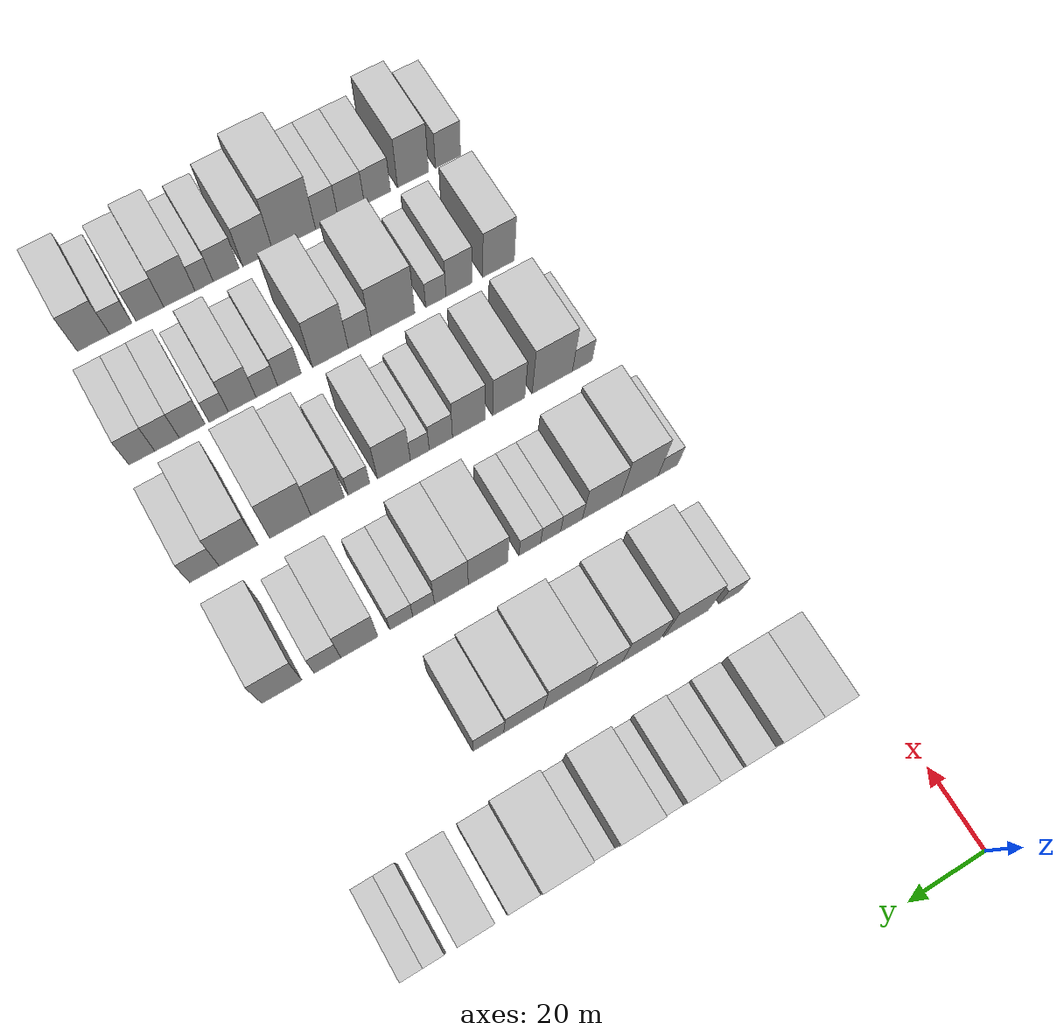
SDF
<sdf version="1.6">
 <world name="default">
  <model name="building_62">
   <static>1</static>
   <pose>50.0000 14.7168 0 0.000000 0.000000 0.000000</pose>
   <link name="link">
    <pose>0 0 10.50 0 0 0</pose>
    <collision name="collision"><geometry><box><size>20.0000 8.4098 21.0000</size></box></geometry></collision>
    <visual name="visual">
     <cast_shadows>0</cast_shadows>
     <geometry><box><size>20.0000 8.4098 21.0000</size></box></geometry>
     <material>
      <script>
       <uri>model://HANNAS_wall/materials/scripts</uri>
       <uri>model://HANNAS_wall/materials/textures</uri>
       <name>vrc/HANNAS_wall</name>
      </script>
     </material>
    </visual>
   </link>
  </model>
  <model name="building_63">
   <static>1</static>
   <pose>50.0000 23.9289 0 0.000000 0.000000 0.000000</pose>
   <link name="link">
    <pose>0 0 10.50 0 0 0</pose>
    <collision name="collision"><geometry><box><size>20.0000 10.0146 21.0000</size></box></geometry></collision>
    <visual name="visual">
     <cast_shadows>0</cast_shadows>
     <geometry><box><size>20.0000 10.0146 21.0000</size></box></geometry>
     <material>
      <script>
       <uri>model://HANNAS_wall/materials/scripts</uri>
       <uri>model://HANNAS_wall/materials/textures</uri>
       <name>vrc/HANNAS_wall</name>
      </script>
     </material>
    </visual>
   </link>
  </model>
  <model name="building_64">
   <static>1</static>
   <pose>50.0000 33.5453 0 0.000000 0.000000 0.000000</pose>
   <link name="link">
    <pose>0 0 9.00 0 0 0</pose>
    <collision name="collision"><geometry><box><size>20.0000 7.2182 18.0000</size></box></geometry></collision>
    <visual name="visual">
     <cast_shadows>0</cast_shadows>
     <geometry><box><size>20.0000 7.2182 18.0000</size></box></geometry>
     <material>
      <script>
       <uri>model://HANNAS_wall/materials/scripts</uri>
       <uri>model://HANNAS_wall/materials/textures</uri>
       <name>vrc/HANNAS_wall</name>
      </script>
     </material>
    </visual>
   </link>
  </model>
  <model name="building_65">
   <static>1</static>
   <pose>50.0000 40.1623 0 0.000000 0.000000 0.000000</pose>
   <link name="link">
    <pose>0 0 7.50 0 0 0</pose>
    <collision name="collision"><geometry><box><size>20.0000 6.0159 15.0000</size></box></geometry></collision>
    <visual name="visual">
     <cast_shadows>0</cast_shadows>
     <geometry><box><size>20.0000 6.0159 15.0000</size></box></geometry>
     <material>
      <script>
       <uri>model://HANNAS_wall/materials/scripts</uri>
       <uri>model://HANNAS_wall/materials/textures</uri>
       <name>vrc/HANNAS_wall</name>
      </script>
     </material>
    </visual>
   </link>
  </model>
  <model name="building_66">
   <static>1</static>
   <pose>50.0000 47.1548 0 0.000000 0.000000 0.000000</pose>
   <link name="link">
    <pose>0 0 9.00 0 0 0</pose>
    <collision name="collision"><geometry><box><size>20.0000 7.9690 18.0000</size></box></geometry></collision>
    <visual name="visual">
     <cast_shadows>0</cast_shadows>
     <geometry><box><size>20.0000 7.9690 18.0000</size></box></geometry>
     <material>
      <script>
       <uri>model://HANNAS_wall/materials/scripts</uri>
       <uri>model://HANNAS_wall/materials/textures</uri>
       <name>vrc/HANNAS_wall</name>
      </script>
     </material>
    </visual>
   </link>
  </model>
  <model name="building_67">
   <static>1</static>
   <pose>50.0000 54.0745 0 0.000000 0.000000 0.000000</pose>
   <link name="link">
    <pose>0 0 6.00 0 0 0</pose>
    <collision name="collision"><geometry><box><size>20.0000 5.8704 12.0000</size></box></geometry></collision>
    <visual name="visual">
     <cast_shadows>0</cast_shadows>
     <geometry><box><size>20.0000 5.8704 12.0000</size></box></geometry>
     <material>
      <script>
       <uri>model://HANNAS_wall/materials/scripts</uri>
       <uri>model://HANNAS_wall/materials/textures</uri>
       <name>vrc/HANNAS_wall</name>
      </script>
     </material>
    </visual>
   </link>
  </model>
  <model name="building_68">
   <static>1</static>
   <pose>50.0000 62.2792 0 0.000000 0.000000 0.000000</pose>
   <link name="link">
    <pose>0 0 12.00 0 0 0</pose>
    <collision name="collision"><geometry><box><size>20.0000 10.5389 24.0000</size></box></geometry></collision>
    <visual name="visual">
     <cast_shadows>0</cast_shadows>
     <geometry><box><size>20.0000 10.5389 24.0000</size></box></geometry>
     <material>
      <script>
       <uri>model://HANNAS_wall/materials/scripts</uri>
       <uri>model://HANNAS_wall/materials/textures</uri>
       <name>vrc/HANNAS_wall</name>
      </script>
     </material>
    </visual>
   </link>
  </model>
  <model name="building_69">
   <static>1</static>
   <pose>50.0000 69.9918 0 0.000000 0.000000 0.000000</pose>
   <link name="link">
    <pose>0 0 6.00 0 0 0</pose>
    <collision name="collision"><geometry><box><size>20.0000 4.8864 12.0000</size></box></geometry></collision>
    <visual name="visual">
     <cast_shadows>0</cast_shadows>
     <geometry><box><size>20.0000 4.8864 12.0000</size></box></geometry>
     <material>
      <script>
       <uri>model://HANNAS_wall/materials/scripts</uri>
       <uri>model://HANNAS_wall/materials/textures</uri>
       <name>vrc/HANNAS_wall</name>
      </script>
     </material>
    </visual>
   </link>
  </model>
  <model name="building_70">
   <static>1</static>
   <pose>50.0000 79.2422 0 0.000000 0.000000 0.000000</pose>
   <link name="link">
    <pose>0 0 12.00 0 0 0</pose>
    <collision name="collision"><geometry><box><size>20.0000 11.6143 24.0000</size></box></geometry></collision>
    <visual name="visual">
     <cast_shadows>0</cast_shadows>
     <geometry><box><size>20.0000 11.6143 24.0000</size></box></geometry>
     <material>
      <script>
       <uri>model://HANNAS_wall/materials/scripts</uri>
       <uri>model://HANNAS_wall/materials/textures</uri>
       <name>vrc/HANNAS_wall</name>
      </script>
     </material>
    </visual>
   </link>
  </model>
  <model name="building_71">
   <static>1</static>
   <pose>50.0000 88.7666 0 0.000000 0.000000 0.000000</pose>
   <link name="link">
    <pose>0 0 7.50 0 0 0</pose>
    <collision name="collision"><geometry><box><size>20.0000 7.4345 15.0000</size></box></geometry></collision>
    <visual name="visual">
     <cast_shadows>0</cast_shadows>
     <geometry><box><size>20.0000 7.4345 15.0000</size></box></geometry>
     <material>
      <script>
       <uri>model://HANNAS_wall/materials/scripts</uri>
       <uri>model://HANNAS_wall/materials/textures</uri>
       <name>vrc/HANNAS_wall</name>
      </script>
     </material>
    </visual>
   </link>
  </model>
  <model name="building_72">
   <static>1</static>
   <pose>50.0000 99.7074 0 0.000000 0.000000 0.000000</pose>
   <link name="link">
    <pose>0 0 9.00 0 0 0</pose>
    <collision name="collision"><geometry><box><size>20.0000 8.4472 18.0000</size></box></geometry></collision>
    <visual name="visual">
     <cast_shadows>0</cast_shadows>
     <geometry><box><size>20.0000 8.4472 18.0000</size></box></geometry>
     <material>
      <script>
       <uri>model://HANNAS_wall/materials/scripts</uri>
       <uri>model://HANNAS_wall/materials/textures</uri>
       <name>vrc/HANNAS_wall</name>
      </script>
     </material>
    </visual>
   </link>
  </model>
  <model name="building_73">
   <static>1</static>
   <pose>50.0000 109.3874 0 0.000000 0.000000 0.000000</pose>
   <link name="link">
    <pose>0 0 6.00 0 0 0</pose>
    <collision name="collision"><geometry><box><size>20.0000 4.9127 12.0000</size></box></geometry></collision>
    <visual name="visual">
     <cast_shadows>0</cast_shadows>
     <geometry><box><size>20.0000 4.9127 12.0000</size></box></geometry>
     <material>
      <script>
       <uri>model://HANNAS_wall/materials/scripts</uri>
       <uri>model://HANNAS_wall/materials/textures</uri>
       <name>vrc/HANNAS_wall</name>
      </script>
     </material>
    </visual>
   </link>
  </model>
  <model name="building_74">
   <static>1</static>
   <pose>50.0000 114.4167 0 0.000000 0.000000 0.000000</pose>
   <link name="link">
    <pose>0 0 6.00 0 0 0</pose>
    <collision name="collision"><geometry><box><size>20.0000 5.1460 12.0000</size></box></geometry></collision>
    <visual name="visual">
     <cast_shadows>0</cast_shadows>
     <geometry><box><size>20.0000 5.1460 12.0000</size></box></geometry>
     <material>
      <script>
       <uri>model://HANNAS_wall/materials/scripts</uri>
       <uri>model://HANNAS_wall/materials/textures</uri>
       <name>vrc/HANNAS_wall</name>
      </script>
     </material>
    </visual>
   </link>
  </model>
  <model name="building_182">
   <static>1</static>
   <pose>82.0000 15.6410 0 0.000000 0.000000 0.000000</pose>
   <link name="link">
    <pose>0 0 6.00 0 0 0</pose>
    <collision name="collision"><geometry><box><size>20.0000 5.5206 12.0000</size></box></geometry></collision>
    <visual name="visual">
     <cast_shadows>0</cast_shadows>
     <geometry><box><size>20.0000 5.5206 12.0000</size></box></geometry>
     <material>
      <script>
       <uri>model://HANNAS_wall/materials/scripts</uri>
       <uri>model://HANNAS_wall/materials/textures</uri>
       <name>vrc/HANNAS_wall</name>
      </script>
     </material>
    </visual>
   </link>
  </model>
  <model name="building_183">
   <static>1</static>
   <pose>82.0000 27.2115 0 0.000000 0.000000 0.000000</pose>
   <link name="link">
    <pose>0 0 12.00 0 0 0</pose>
    <collision name="collision"><geometry><box><size>20.0000 11.6202 24.0000</size></box></geometry></collision>
    <visual name="visual">
     <cast_shadows>0</cast_shadows>
     <geometry><box><size>20.0000 11.6202 24.0000</size></box></geometry>
     <material>
      <script>
       <uri>model://HANNAS_wall/materials/scripts</uri>
       <uri>model://HANNAS_wall/materials/textures</uri>
       <name>vrc/HANNAS_wall</name>
      </script>
     </material>
    </visual>
   </link>
  </model>
  <model name="building_184">
   <static>1</static>
   <pose>82.0000 39.0086 0 0.000000 0.000000 0.000000</pose>
   <link name="link">
    <pose>0 0 10.50 0 0 0</pose>
    <collision name="collision"><geometry><box><size>20.0000 9.9740 21.0000</size></box></geometry></collision>
    <visual name="visual">
     <cast_shadows>0</cast_shadows>
     <geometry><box><size>20.0000 9.9740 21.0000</size></box></geometry>
     <material>
      <script>
       <uri>model://HANNAS_wall/materials/scripts</uri>
       <uri>model://HANNAS_wall/materials/textures</uri>
       <name>vrc/HANNAS_wall</name>
      </script>
     </material>
    </visual>
   </link>
  </model>
  <model name="building_185">
   <static>1</static>
   <pose>82.0000 48.3082 0 0.000000 0.000000 0.000000</pose>
   <link name="link">
    <pose>0 0 9.00 0 0 0</pose>
    <collision name="collision"><geometry><box><size>20.0000 8.6252 18.0000</size></box></geometry></collision>
    <visual name="visual">
     <cast_shadows>0</cast_shadows>
     <geometry><box><size>20.0000 8.6252 18.0000</size></box></geometry>
     <material>
      <script>
       <uri>model://HANNAS_wall/materials/scripts</uri>
       <uri>model://HANNAS_wall/materials/textures</uri>
       <name>vrc/HANNAS_wall</name>
      </script>
     </material>
    </visual>
   </link>
  </model>
  <model name="building_186">
   <static>1</static>
   <pose>82.0000 58.3851 0 0.000000 0.000000 0.000000</pose>
   <link name="link">
    <pose>0 0 12.00 0 0 0</pose>
    <collision name="collision"><geometry><box><size>20.0000 11.5287 24.0000</size></box></geometry></collision>
    <visual name="visual">
     <cast_shadows>0</cast_shadows>
     <geometry><box><size>20.0000 11.5287 24.0000</size></box></geometry>
     <material>
      <script>
       <uri>model://HANNAS_wall/materials/scripts</uri>
       <uri>model://HANNAS_wall/materials/textures</uri>
       <name>vrc/HANNAS_wall</name>
      </script>
     </material>
    </visual>
   </link>
  </model>
  <model name="building_187">
   <static>1</static>
   <pose>82.0000 69.1401 0 0.000000 0.000000 0.000000</pose>
   <link name="link">
    <pose>0 0 10.50 0 0 0</pose>
    <collision name="collision"><geometry><box><size>20.0000 9.9812 21.0000</size></box></geometry></collision>
    <visual name="visual">
     <cast_shadows>0</cast_shadows>
     <geometry><box><size>20.0000 9.9812 21.0000</size></box></geometry>
     <material>
      <script>
       <uri>model://HANNAS_wall/materials/scripts</uri>
       <uri>model://HANNAS_wall/materials/textures</uri>
       <name>vrc/HANNAS_wall</name>
      </script>
     </material>
    </visual>
   </link>
  </model>
  <model name="building_188">
   <static>1</static>
   <pose>82.0000 77.9259 0 0.000000 0.000000 0.000000</pose>
   <link name="link">
    <pose>0 0 9.00 0 0 0</pose>
    <collision name="collision"><geometry><box><size>20.0000 7.5904 18.0000</size></box></geometry></collision>
    <visual name="visual">
     <cast_shadows>0</cast_shadows>
     <geometry><box><size>20.0000 7.5904 18.0000</size></box></geometry>
     <material>
      <script>
       <uri>model://HANNAS_wall/materials/scripts</uri>
       <uri>model://HANNAS_wall/materials/textures</uri>
       <name>vrc/HANNAS_wall</name>
      </script>
     </material>
    </visual>
   </link>
  </model>
  <model name="building_296">
   <static>1</static>
   <pose>114.0000 11.0678 0 0.000000 0.000000 0.000000</pose>
   <link name="link">
    <pose>0 0 6.00 0 0 0</pose>
    <collision name="collision"><geometry><box><size>20.0000 5.3892 12.0000</size></box></geometry></collision>
    <visual name="visual">
     <cast_shadows>0</cast_shadows>
     <geometry><box><size>20.0000 5.3892 12.0000</size></box></geometry>
     <material>
      <script>
       <uri>model://HANNAS_wall/materials/scripts</uri>
       <uri>model://HANNAS_wall/materials/textures</uri>
       <name>vrc/HANNAS_wall</name>
      </script>
     </material>
    </visual>
   </link>
  </model>
  <model name="building_297">
   <static>1</static>
   <pose>114.0000 18.8016 0 0.000000 0.000000 0.000000</pose>
   <link name="link">
    <pose>0 0 12.00 0 0 0</pose>
    <collision name="collision"><geometry><box><size>20.0000 10.0784 24.0000</size></box></geometry></collision>
    <visual name="visual">
     <cast_shadows>0</cast_shadows>
     <geometry><box><size>20.0000 10.0784 24.0000</size></box></geometry>
     <material>
      <script>
       <uri>model://HANNAS_wall/materials/scripts</uri>
       <uri>model://HANNAS_wall/materials/textures</uri>
       <name>vrc/HANNAS_wall</name>
      </script>
     </material>
    </visual>
   </link>
  </model>
  <model name="building_298">
   <static>1</static>
   <pose>114.0000 29.0412 0 0.000000 0.000000 0.000000</pose>
   <link name="link">
    <pose>0 0 10.50 0 0 0</pose>
    <collision name="collision"><geometry><box><size>20.0000 10.4008 21.0000</size></box></geometry></collision>
    <visual name="visual">
     <cast_shadows>0</cast_shadows>
     <geometry><box><size>20.0000 10.4008 21.0000</size></box></geometry>
     <material>
      <script>
       <uri>model://HANNAS_wall/materials/scripts</uri>
       <uri>model://HANNAS_wall/materials/textures</uri>
       <name>vrc/HANNAS_wall</name>
      </script>
     </material>
    </visual>
   </link>
  </model>
  <model name="building_299">
   <static>1</static>
   <pose>114.0000 37.1388 0 0.000000 0.000000 0.000000</pose>
   <link name="link">
    <pose>0 0 6.00 0 0 0</pose>
    <collision name="collision"><geometry><box><size>20.0000 5.7946 12.0000</size></box></geometry></collision>
    <visual name="visual">
     <cast_shadows>0</cast_shadows>
     <geometry><box><size>20.0000 5.7946 12.0000</size></box></geometry>
     <material>
      <script>
       <uri>model://HANNAS_wall/materials/scripts</uri>
       <uri>model://HANNAS_wall/materials/textures</uri>
       <name>vrc/HANNAS_wall</name>
      </script>
     </material>
    </visual>
   </link>
  </model>
  <model name="building_300">
   <static>1</static>
   <pose>114.0000 42.6697 0 0.000000 0.000000 0.000000</pose>
   <link name="link">
    <pose>0 0 6.00 0 0 0</pose>
    <collision name="collision"><geometry><box><size>20.0000 5.2671 12.0000</size></box></geometry></collision>
    <visual name="visual">
     <cast_shadows>0</cast_shadows>
     <geometry><box><size>20.0000 5.2671 12.0000</size></box></geometry>
     <material>
      <script>
       <uri>model://HANNAS_wall/materials/scripts</uri>
       <uri>model://HANNAS_wall/materials/textures</uri>
       <name>vrc/HANNAS_wall</name>
      </script>
     </material>
    </visual>
   </link>
  </model>
  <model name="building_301">
   <static>1</static>
   <pose>114.0000 48.1401 0 0.000000 0.000000 0.000000</pose>
   <link name="link">
    <pose>0 0 6.00 0 0 0</pose>
    <collision name="collision"><geometry><box><size>20.0000 5.6737 12.0000</size></box></geometry></collision>
    <visual name="visual">
     <cast_shadows>0</cast_shadows>
     <geometry><box><size>20.0000 5.6737 12.0000</size></box></geometry>
     <material>
      <script>
       <uri>model://HANNAS_wall/materials/scripts</uri>
       <uri>model://HANNAS_wall/materials/textures</uri>
       <name>vrc/HANNAS_wall</name>
      </script>
     </material>
    </visual>
   </link>
  </model>
  <model name="building_302">
   <static>1</static>
   <pose>114.0000 59.0557 0 0.000000 0.000000 0.000000</pose>
   <link name="link">
    <pose>0 0 10.50 0 0 0</pose>
    <collision name="collision"><geometry><box><size>20.0000 10.1576 21.0000</size></box></geometry></collision>
    <visual name="visual">
     <cast_shadows>0</cast_shadows>
     <geometry><box><size>20.0000 10.1576 21.0000</size></box></geometry>
     <material>
      <script>
       <uri>model://HANNAS_wall/materials/scripts</uri>
       <uri>model://HANNAS_wall/materials/textures</uri>
       <name>vrc/HANNAS_wall</name>
      </script>
     </material>
    </visual>
   </link>
  </model>
  <model name="building_303">
   <static>1</static>
   <pose>114.0000 68.4802 0 0.000000 0.000000 0.000000</pose>
   <link name="link">
    <pose>0 0 10.50 0 0 0</pose>
    <collision name="collision"><geometry><box><size>20.0000 8.6915 21.0000</size></box></geometry></collision>
    <visual name="visual">
     <cast_shadows>0</cast_shadows>
     <geometry><box><size>20.0000 8.6915 21.0000</size></box></geometry>
     <material>
      <script>
       <uri>model://HANNAS_wall/materials/scripts</uri>
       <uri>model://HANNAS_wall/materials/textures</uri>
       <name>vrc/HANNAS_wall</name>
      </script>
     </material>
    </visual>
   </link>
  </model>
  <model name="building_304">
   <static>1</static>
   <pose>114.0000 75.5660 0 0.000000 0.000000 0.000000</pose>
   <link name="link">
    <pose>0 0 6.00 0 0 0</pose>
    <collision name="collision"><geometry><box><size>20.0000 5.4801 12.0000</size></box></geometry></collision>
    <visual name="visual">
     <cast_shadows>0</cast_shadows>
     <geometry><box><size>20.0000 5.4801 12.0000</size></box></geometry>
     <material>
      <script>
       <uri>model://HANNAS_wall/materials/scripts</uri>
       <uri>model://HANNAS_wall/materials/textures</uri>
       <name>vrc/HANNAS_wall</name>
      </script>
     </material>
    </visual>
   </link>
  </model>
  <model name="building_305">
   <static>1</static>
   <pose>114.0000 81.2241 0 0.000000 0.000000 0.000000</pose>
   <link name="link">
    <pose>0 0 6.00 0 0 0</pose>
    <collision name="collision"><geometry><box><size>20.0000 5.8360 12.0000</size></box></geometry></collision>
    <visual name="visual">
     <cast_shadows>0</cast_shadows>
     <geometry><box><size>20.0000 5.8360 12.0000</size></box></geometry>
     <material>
      <script>
       <uri>model://HANNAS_wall/materials/scripts</uri>
       <uri>model://HANNAS_wall/materials/textures</uri>
       <name>vrc/HANNAS_wall</name>
      </script>
     </material>
    </visual>
   </link>
  </model>
  <model name="building_306">
   <static>1</static>
   <pose>114.0000 91.7777 0 0.000000 0.000000 0.000000</pose>
   <link name="link">
    <pose>0 0 10.50 0 0 0</pose>
    <collision name="collision"><geometry><box><size>20.0000 9.2712 21.0000</size></box></geometry></collision>
    <visual name="visual">
     <cast_shadows>0</cast_shadows>
     <geometry><box><size>20.0000 9.2712 21.0000</size></box></geometry>
     <material>
      <script>
       <uri>model://HANNAS_wall/materials/scripts</uri>
       <uri>model://HANNAS_wall/materials/textures</uri>
       <name>vrc/HANNAS_wall</name>
      </script>
     </material>
    </visual>
   </link>
  </model>
  <model name="building_307">
   <static>1</static>
   <pose>114.0000 99.7240 0 0.000000 0.000000 0.000000</pose>
   <link name="link">
    <pose>0 0 7.50 0 0 0</pose>
    <collision name="collision"><geometry><box><size>20.0000 6.6213 15.0000</size></box></geometry></collision>
    <visual name="visual">
     <cast_shadows>0</cast_shadows>
     <geometry><box><size>20.0000 6.6213 15.0000</size></box></geometry>
     <material>
      <script>
       <uri>model://HANNAS_wall/materials/scripts</uri>
       <uri>model://HANNAS_wall/materials/textures</uri>
       <name>vrc/HANNAS_wall</name>
      </script>
     </material>
    </visual>
   </link>
  </model>
  <model name="building_308">
   <static>1</static>
   <pose>114.0000 110.9625 0 0.000000 0.000000 0.000000</pose>
   <link name="link">
    <pose>0 0 10.50 0 0 0</pose>
    <collision name="collision"><geometry><box><size>20.0000 9.8557 21.0000</size></box></geometry></collision>
    <visual name="visual">
     <cast_shadows>0</cast_shadows>
     <geometry><box><size>20.0000 9.8557 21.0000</size></box></geometry>
     <material>
      <script>
       <uri>model://HANNAS_wall/materials/scripts</uri>
       <uri>model://HANNAS_wall/materials/textures</uri>
       <name>vrc/HANNAS_wall</name>
      </script>
     </material>
    </visual>
   </link>
  </model>
  <model name="building_414">
   <static>1</static>
   <pose>146.0000 14.2415 0 0.000000 0.000000 0.000000</pose>
   <link name="link">
    <pose>0 0 6.00 0 0 0</pose>
    <collision name="collision"><geometry><box><size>20.0000 5.4592 12.0000</size></box></geometry></collision>
    <visual name="visual">
     <cast_shadows>0</cast_shadows>
     <geometry><box><size>20.0000 5.4592 12.0000</size></box></geometry>
     <material>
      <script>
       <uri>model://HANNAS_wall/materials/scripts</uri>
       <uri>model://HANNAS_wall/materials/textures</uri>
       <name>vrc/HANNAS_wall</name>
      </script>
     </material>
    </visual>
   </link>
  </model>
  <model name="building_415">
   <static>1</static>
   <pose>146.0000 22.5292 0 0.000000 0.000000 0.000000</pose>
   <link name="link">
    <pose>0 0 12.00 0 0 0</pose>
    <collision name="collision"><geometry><box><size>20.0000 11.1163 24.0000</size></box></geometry></collision>
    <visual name="visual">
     <cast_shadows>0</cast_shadows>
     <geometry><box><size>20.0000 11.1163 24.0000</size></box></geometry>
     <material>
      <script>
       <uri>model://HANNAS_wall/materials/scripts</uri>
       <uri>model://HANNAS_wall/materials/textures</uri>
       <name>vrc/HANNAS_wall</name>
      </script>
     </material>
    </visual>
   </link>
  </model>
  <model name="building_416">
   <static>1</static>
   <pose>146.0000 34.4657 0 0.000000 0.000000 0.000000</pose>
   <link name="link">
    <pose>0 0 10.50 0 0 0</pose>
    <collision name="collision"><geometry><box><size>20.0000 8.7568 21.0000</size></box></geometry></collision>
    <visual name="visual">
     <cast_shadows>0</cast_shadows>
     <geometry><box><size>20.0000 8.7568 21.0000</size></box></geometry>
     <material>
      <script>
       <uri>model://HANNAS_wall/materials/scripts</uri>
       <uri>model://HANNAS_wall/materials/textures</uri>
       <name>vrc/HANNAS_wall</name>
      </script>
     </material>
    </visual>
   </link>
  </model>
  <model name="building_417">
   <static>1</static>
   <pose>146.0000 45.2275 0 0.000000 0.000000 0.000000</pose>
   <link name="link">
    <pose>0 0 10.50 0 0 0</pose>
    <collision name="collision"><geometry><box><size>20.0000 8.7667 21.0000</size></box></geometry></collision>
    <visual name="visual">
     <cast_shadows>0</cast_shadows>
     <geometry><box><size>20.0000 8.7667 21.0000</size></box></geometry>
     <material>
      <script>
       <uri>model://HANNAS_wall/materials/scripts</uri>
       <uri>model://HANNAS_wall/materials/textures</uri>
       <name>vrc/HANNAS_wall</name>
      </script>
     </material>
    </visual>
   </link>
  </model>
  <model name="building_418">
   <static>1</static>
   <pose>146.0000 52.7084 0 0.000000 0.000000 0.000000</pose>
   <link name="link">
    <pose>0 0 7.50 0 0 0</pose>
    <collision name="collision"><geometry><box><size>20.0000 6.1950 15.0000</size></box></geometry></collision>
    <visual name="visual">
     <cast_shadows>0</cast_shadows>
     <geometry><box><size>20.0000 6.1950 15.0000</size></box></geometry>
     <material>
      <script>
       <uri>model://HANNAS_wall/materials/scripts</uri>
       <uri>model://HANNAS_wall/materials/textures</uri>
       <name>vrc/HANNAS_wall</name>
      </script>
     </material>
    </visual>
   </link>
  </model>
  <model name="building_419">
   <static>1</static>
   <pose>146.0000 58.2953 0 0.000000 0.000000 0.000000</pose>
   <link name="link">
    <pose>0 0 6.00 0 0 0</pose>
    <collision name="collision"><geometry><box><size>20.0000 4.9789 12.0000</size></box></geometry></collision>
    <visual name="visual">
     <cast_shadows>0</cast_shadows>
     <geometry><box><size>20.0000 4.9789 12.0000</size></box></geometry>
     <material>
      <script>
       <uri>model://HANNAS_wall/materials/scripts</uri>
       <uri>model://HANNAS_wall/materials/textures</uri>
       <name>vrc/HANNAS_wall</name>
      </script>
     </material>
    </visual>
   </link>
  </model>
  <model name="building_420">
   <static>1</static>
   <pose>146.0000 65.1217 0 0.000000 0.000000 0.000000</pose>
   <link name="link">
    <pose>0 0 10.50 0 0 0</pose>
    <collision name="collision"><geometry><box><size>20.0000 8.6739 21.0000</size></box></geometry></collision>
    <visual name="visual">
     <cast_shadows>0</cast_shadows>
     <geometry><box><size>20.0000 8.6739 21.0000</size></box></geometry>
     <material>
      <script>
       <uri>model://HANNAS_wall/materials/scripts</uri>
       <uri>model://HANNAS_wall/materials/textures</uri>
       <name>vrc/HANNAS_wall</name>
      </script>
     </material>
    </visual>
   </link>
  </model>
  <model name="building_421">
   <static>1</static>
   <pose>146.0000 74.2929 0 0.000000 0.000000 0.000000</pose>
   <link name="link">
    <pose>0 0 6.00 0 0 0</pose>
    <collision name="collision"><geometry><box><size>20.0000 5.6686 12.0000</size></box></geometry></collision>
    <visual name="visual">
     <cast_shadows>0</cast_shadows>
     <geometry><box><size>20.0000 5.6686 12.0000</size></box></geometry>
     <material>
      <script>
       <uri>model://HANNAS_wall/materials/scripts</uri>
       <uri>model://HANNAS_wall/materials/textures</uri>
       <name>vrc/HANNAS_wall</name>
      </script>
     </material>
    </visual>
   </link>
  </model>
  <model name="building_422">
   <static>1</static>
   <pose>146.0000 82.4089 0 0.000000 0.000000 0.000000</pose>
   <link name="link">
    <pose>0 0 10.50 0 0 0</pose>
    <collision name="collision"><geometry><box><size>20.0000 8.5634 21.0000</size></box></geometry></collision>
    <visual name="visual">
     <cast_shadows>0</cast_shadows>
     <geometry><box><size>20.0000 8.5634 21.0000</size></box></geometry>
     <material>
      <script>
       <uri>model://HANNAS_wall/materials/scripts</uri>
       <uri>model://HANNAS_wall/materials/textures</uri>
       <name>vrc/HANNAS_wall</name>
      </script>
     </material>
    </visual>
   </link>
  </model>
  <model name="building_423">
   <static>1</static>
   <pose>146.0000 91.9608 0 0.000000 0.000000 0.000000</pose>
   <link name="link">
    <pose>0 0 12.00 0 0 0</pose>
    <collision name="collision"><geometry><box><size>20.0000 10.5404 24.0000</size></box></geometry></collision>
    <visual name="visual">
     <cast_shadows>0</cast_shadows>
     <geometry><box><size>20.0000 10.5404 24.0000</size></box></geometry>
     <material>
      <script>
       <uri>model://HANNAS_wall/materials/scripts</uri>
       <uri>model://HANNAS_wall/materials/textures</uri>
       <name>vrc/HANNAS_wall</name>
      </script>
     </material>
    </visual>
   </link>
  </model>
  <model name="building_424">
   <static>1</static>
   <pose>146.0000 105.0972 0 0.000000 0.000000 0.000000</pose>
   <link name="link">
    <pose>0 0 10.50 0 0 0</pose>
    <collision name="collision"><geometry><box><size>20.0000 9.7323 21.0000</size></box></geometry></collision>
    <visual name="visual">
     <cast_shadows>0</cast_shadows>
     <geometry><box><size>20.0000 9.7323 21.0000</size></box></geometry>
     <material>
      <script>
       <uri>model://HANNAS_wall/materials/scripts</uri>
       <uri>model://HANNAS_wall/materials/textures</uri>
       <name>vrc/HANNAS_wall</name>
      </script>
     </material>
    </visual>
   </link>
  </model>
  <model name="building_425">
   <static>1</static>
   <pose>146.0000 113.6692 0 0.000000 0.000000 0.000000</pose>
   <link name="link">
    <pose>0 0 7.50 0 0 0</pose>
    <collision name="collision"><geometry><box><size>20.0000 7.4116 15.0000</size></box></geometry></collision>
    <visual name="visual">
     <cast_shadows>0</cast_shadows>
     <geometry><box><size>20.0000 7.4116 15.0000</size></box></geometry>
     <material>
      <script>
       <uri>model://HANNAS_wall/materials/scripts</uri>
       <uri>model://HANNAS_wall/materials/textures</uri>
       <name>vrc/HANNAS_wall</name>
      </script>
     </material>
    </visual>
   </link>
  </model>
  <model name="building_532">
   <static>1</static>
   <pose>178.0000 18.1400 0 0.000000 0.000000 0.000000</pose>
   <link name="link">
    <pose>0 0 10.50 0 0 0</pose>
    <collision name="collision"><geometry><box><size>20.0000 8.8533 21.0000</size></box></geometry></collision>
    <visual name="visual">
     <cast_shadows>0</cast_shadows>
     <geometry><box><size>20.0000 8.8533 21.0000</size></box></geometry>
     <material>
      <script>
       <uri>model://HANNAS_wall/materials/scripts</uri>
       <uri>model://HANNAS_wall/materials/textures</uri>
       <name>vrc/HANNAS_wall</name>
      </script>
     </material>
    </visual>
   </link>
  </model>
  <model name="building_533">
   <static>1</static>
   <pose>178.0000 29.2135 0 0.000000 0.000000 0.000000</pose>
   <link name="link">
    <pose>0 0 9.00 0 0 0</pose>
    <collision name="collision"><geometry><box><size>20.0000 7.2938 18.0000</size></box></geometry></collision>
    <visual name="visual">
     <cast_shadows>0</cast_shadows>
     <geometry><box><size>20.0000 7.2938 18.0000</size></box></geometry>
     <material>
      <script>
       <uri>model://HANNAS_wall/materials/scripts</uri>
       <uri>model://HANNAS_wall/materials/textures</uri>
       <name>vrc/HANNAS_wall</name>
      </script>
     </material>
    </visual>
   </link>
  </model>
  <model name="building_534">
   <static>1</static>
   <pose>178.0000 35.6521 0 0.000000 0.000000 0.000000</pose>
   <link name="link">
    <pose>0 0 6.00 0 0 0</pose>
    <collision name="collision"><geometry><box><size>20.0000 5.5834 12.0000</size></box></geometry></collision>
    <visual name="visual">
     <cast_shadows>0</cast_shadows>
     <geometry><box><size>20.0000 5.5834 12.0000</size></box></geometry>
     <material>
      <script>
       <uri>model://HANNAS_wall/materials/scripts</uri>
       <uri>model://HANNAS_wall/materials/textures</uri>
       <name>vrc/HANNAS_wall</name>
      </script>
     </material>
    </visual>
   </link>
  </model>
  <model name="building_535">
   <static>1</static>
   <pose>178.0000 47.4135 0 0.000000 0.000000 0.000000</pose>
   <link name="link">
    <pose>0 0 12.00 0 0 0</pose>
    <collision name="collision"><geometry><box><size>20.0000 11.9394 24.0000</size></box></geometry></collision>
    <visual name="visual">
     <cast_shadows>0</cast_shadows>
     <geometry><box><size>20.0000 11.9394 24.0000</size></box></geometry>
     <material>
      <script>
       <uri>model://HANNAS_wall/materials/scripts</uri>
       <uri>model://HANNAS_wall/materials/textures</uri>
       <name>vrc/HANNAS_wall</name>
      </script>
     </material>
    </visual>
   </link>
  </model>
  <model name="building_536">
   <static>1</static>
   <pose>178.0000 56.4603 0 0.000000 0.000000 0.000000</pose>
   <link name="link">
    <pose>0 0 7.50 0 0 0</pose>
    <collision name="collision"><geometry><box><size>20.0000 6.1542 15.0000</size></box></geometry></collision>
    <visual name="visual">
     <cast_shadows>0</cast_shadows>
     <geometry><box><size>20.0000 6.1542 15.0000</size></box></geometry>
     <material>
      <script>
       <uri>model://HANNAS_wall/materials/scripts</uri>
       <uri>model://HANNAS_wall/materials/textures</uri>
       <name>vrc/HANNAS_wall</name>
      </script>
     </material>
    </visual>
   </link>
  </model>
  <model name="building_537">
   <static>1</static>
   <pose>178.0000 64.3511 0 0.000000 0.000000 0.000000</pose>
   <link name="link">
    <pose>0 0 12.00 0 0 0</pose>
    <collision name="collision"><geometry><box><size>20.0000 9.6273 24.0000</size></box></geometry></collision>
    <visual name="visual">
     <cast_shadows>0</cast_shadows>
     <geometry><box><size>20.0000 9.6273 24.0000</size></box></geometry>
     <material>
      <script>
       <uri>model://HANNAS_wall/materials/scripts</uri>
       <uri>model://HANNAS_wall/materials/textures</uri>
       <name>vrc/HANNAS_wall</name>
      </script>
     </material>
    </visual>
   </link>
  </model>
  <model name="building_538">
   <static>1</static>
   <pose>178.0000 75.3043 0 0.000000 0.000000 0.000000</pose>
   <link name="link">
    <pose>0 0 7.50 0 0 0</pose>
    <collision name="collision"><geometry><box><size>20.0000 6.2792 15.0000</size></box></geometry></collision>
    <visual name="visual">
     <cast_shadows>0</cast_shadows>
     <geometry><box><size>20.0000 6.2792 15.0000</size></box></geometry>
     <material>
      <script>
       <uri>model://HANNAS_wall/materials/scripts</uri>
       <uri>model://HANNAS_wall/materials/textures</uri>
       <name>vrc/HANNAS_wall</name>
      </script>
     </material>
    </visual>
   </link>
  </model>
  <model name="building_539">
   <static>1</static>
   <pose>178.0000 81.2952 0 0.000000 0.000000 0.000000</pose>
   <link name="link">
    <pose>0 0 6.00 0 0 0</pose>
    <collision name="collision"><geometry><box><size>20.0000 5.7026 12.0000</size></box></geometry></collision>
    <visual name="visual">
     <cast_shadows>0</cast_shadows>
     <geometry><box><size>20.0000 5.7026 12.0000</size></box></geometry>
     <material>
      <script>
       <uri>model://HANNAS_wall/materials/scripts</uri>
       <uri>model://HANNAS_wall/materials/textures</uri>
       <name>vrc/HANNAS_wall</name>
      </script>
     </material>
    </visual>
   </link>
  </model>
  <model name="building_540">
   <static>1</static>
   <pose>178.0000 87.7653 0 0.000000 0.000000 0.000000</pose>
   <link name="link">
    <pose>0 0 9.00 0 0 0</pose>
    <collision name="collision"><geometry><box><size>20.0000 7.2375 18.0000</size></box></geometry></collision>
    <visual name="visual">
     <cast_shadows>0</cast_shadows>
     <geometry><box><size>20.0000 7.2375 18.0000</size></box></geometry>
     <material>
      <script>
       <uri>model://HANNAS_wall/materials/scripts</uri>
       <uri>model://HANNAS_wall/materials/textures</uri>
       <name>vrc/HANNAS_wall</name>
      </script>
     </material>
    </visual>
   </link>
  </model>
  <model name="building_541">
   <static>1</static>
   <pose>178.0000 93.8909 0 0.000000 0.000000 0.000000</pose>
   <link name="link">
    <pose>0 0 6.00 0 0 0</pose>
    <collision name="collision"><geometry><box><size>20.0000 5.0136 12.0000</size></box></geometry></collision>
    <visual name="visual">
     <cast_shadows>0</cast_shadows>
     <geometry><box><size>20.0000 5.0136 12.0000</size></box></geometry>
     <material>
      <script>
       <uri>model://HANNAS_wall/materials/scripts</uri>
       <uri>model://HANNAS_wall/materials/textures</uri>
       <name>vrc/HANNAS_wall</name>
      </script>
     </material>
    </visual>
   </link>
  </model>
  <model name="building_542">
   <static>1</static>
   <pose>178.0000 100.7415 0 0.000000 0.000000 0.000000</pose>
   <link name="link">
    <pose>0 0 7.50 0 0 0</pose>
    <collision name="collision"><geometry><box><size>20.0000 6.6876 15.0000</size></box></geometry></collision>
    <visual name="visual">
     <cast_shadows>0</cast_shadows>
     <geometry><box><size>20.0000 6.6876 15.0000</size></box></geometry>
     <material>
      <script>
       <uri>model://HANNAS_wall/materials/scripts</uri>
       <uri>model://HANNAS_wall/materials/textures</uri>
       <name>vrc/HANNAS_wall</name>
      </script>
     </material>
    </visual>
   </link>
  </model>
  <model name="building_543">
   <static>1</static>
   <pose>178.0000 107.2370 0 0.000000 0.000000 0.000000</pose>
   <link name="link">
    <pose>0 0 7.50 0 0 0</pose>
    <collision name="collision"><geometry><box><size>20.0000 6.3035 15.0000</size></box></geometry></collision>
    <visual name="visual">
     <cast_shadows>0</cast_shadows>
     <geometry><box><size>20.0000 6.3035 15.0000</size></box></geometry>
     <material>
      <script>
       <uri>model://HANNAS_wall/materials/scripts</uri>
       <uri>model://HANNAS_wall/materials/textures</uri>
       <name>vrc/HANNAS_wall</name>
      </script>
     </material>
    </visual>
   </link>
  </model>
  <model name="building_544">
   <static>1</static>
   <pose>178.0000 113.6800 0 0.000000 0.000000 0.000000</pose>
   <link name="link">
    <pose>0 0 7.50 0 0 0</pose>
    <collision name="collision"><geometry><box><size>20.0000 6.5826 15.0000</size></box></geometry></collision>
    <visual name="visual">
     <cast_shadows>0</cast_shadows>
     <geometry><box><size>20.0000 6.5826 15.0000</size></box></geometry>
     <material>
      <script>
       <uri>model://HANNAS_wall/materials/scripts</uri>
       <uri>model://HANNAS_wall/materials/textures</uri>
       <name>vrc/HANNAS_wall</name>
      </script>
     </material>
    </visual>
   </link>
  </model>
  <model name="building_643">
   <static>1</static>
   <pose>210.0000 13.7556 0 0.000000 0.000000 0.000000</pose>
   <link name="link">
    <pose>0 0 7.50 0 0 0</pose>
    <collision name="collision"><geometry><box><size>20.0000 7.2207 15.0000</size></box></geometry></collision>
    <visual name="visual">
     <cast_shadows>0</cast_shadows>
     <geometry><box><size>20.0000 7.2207 15.0000</size></box></geometry>
     <material>
      <script>
       <uri>model://HANNAS_wall/materials/scripts</uri>
       <uri>model://HANNAS_wall/materials/textures</uri>
       <name>vrc/HANNAS_wall</name>
      </script>
     </material>
    </visual>
   </link>
  </model>
  <model name="building_644">
   <static>1</static>
   <pose>210.0000 23.7800 0 0.000000 0.000000 0.000000</pose>
   <link name="link">
    <pose>0 0 10.50 0 0 0</pose>
    <collision name="collision"><geometry><box><size>20.0000 8.8283 21.0000</size></box></geometry></collision>
    <visual name="visual">
     <cast_shadows>0</cast_shadows>
     <geometry><box><size>20.0000 8.8283 21.0000</size></box></geometry>
     <material>
      <script>
       <uri>model://HANNAS_wall/materials/scripts</uri>
       <uri>model://HANNAS_wall/materials/textures</uri>
       <name>vrc/HANNAS_wall</name>
      </script>
     </material>
    </visual>
   </link>
  </model>
  <model name="building_645">
   <static>1</static>
   <pose>210.0000 33.8596 0 0.000000 0.000000 0.000000</pose>
   <link name="link">
    <pose>0 0 7.50 0 0 0</pose>
    <collision name="collision"><geometry><box><size>20.0000 7.3309 15.0000</size></box></geometry></collision>
    <visual name="visual">
     <cast_shadows>0</cast_shadows>
     <geometry><box><size>20.0000 7.3309 15.0000</size></box></geometry>
     <material>
      <script>
       <uri>model://HANNAS_wall/materials/scripts</uri>
       <uri>model://HANNAS_wall/materials/textures</uri>
       <name>vrc/HANNAS_wall</name>
      </script>
     </material>
    </visual>
   </link>
  </model>
  <model name="building_646">
   <static>1</static>
   <pose>210.0000 41.2199 0 0.000000 0.000000 0.000000</pose>
   <link name="link">
    <pose>0 0 7.50 0 0 0</pose>
    <collision name="collision"><geometry><box><size>20.0000 7.3898 15.0000</size></box></geometry></collision>
    <visual name="visual">
     <cast_shadows>0</cast_shadows>
     <geometry><box><size>20.0000 7.3898 15.0000</size></box></geometry>
     <material>
      <script>
       <uri>model://HANNAS_wall/materials/scripts</uri>
       <uri>model://HANNAS_wall/materials/textures</uri>
       <name>vrc/HANNAS_wall</name>
      </script>
     </material>
    </visual>
   </link>
  </model>
  <model name="building_647">
   <static>1</static>
   <pose>210.0000 48.0473 0 0.000000 0.000000 0.000000</pose>
   <link name="link">
    <pose>0 0 7.50 0 0 0</pose>
    <collision name="collision"><geometry><box><size>20.0000 6.2649 15.0000</size></box></geometry></collision>
    <visual name="visual">
     <cast_shadows>0</cast_shadows>
     <geometry><box><size>20.0000 6.2649 15.0000</size></box></geometry>
     <material>
      <script>
       <uri>model://HANNAS_wall/materials/scripts</uri>
       <uri>model://HANNAS_wall/materials/textures</uri>
       <name>vrc/HANNAS_wall</name>
      </script>
     </material>
    </visual>
   </link>
  </model>
  <model name="building_648">
   <static>1</static>
   <pose>210.0000 57.0702 0 0.000000 0.000000 0.000000</pose>
   <link name="link">
    <pose>0 0 12.00 0 0 0</pose>
    <collision name="collision"><geometry><box><size>20.0000 11.7810 24.0000</size></box></geometry></collision>
    <visual name="visual">
     <cast_shadows>0</cast_shadows>
     <geometry><box><size>20.0000 11.7810 24.0000</size></box></geometry>
     <material>
      <script>
       <uri>model://HANNAS_wall/materials/scripts</uri>
       <uri>model://HANNAS_wall/materials/textures</uri>
       <name>vrc/HANNAS_wall</name>
      </script>
     </material>
    </visual>
   </link>
  </model>
  <model name="building_649">
   <static>1</static>
   <pose>210.0000 67.0760 0 0.000000 0.000000 0.000000</pose>
   <link name="link">
    <pose>0 0 9.00 0 0 0</pose>
    <collision name="collision"><geometry><box><size>20.0000 8.2306 18.0000</size></box></geometry></collision>
    <visual name="visual">
     <cast_shadows>0</cast_shadows>
     <geometry><box><size>20.0000 8.2306 18.0000</size></box></geometry>
     <material>
      <script>
       <uri>model://HANNAS_wall/materials/scripts</uri>
       <uri>model://HANNAS_wall/materials/textures</uri>
       <name>vrc/HANNAS_wall</name>
      </script>
     </material>
    </visual>
   </link>
  </model>
  <model name="building_650">
   <static>1</static>
   <pose>210.0000 75.7000 0 0.000000 0.000000 0.000000</pose>
   <link name="link">
    <pose>0 0 7.50 0 0 0</pose>
    <collision name="collision"><geometry><box><size>20.0000 7.0174 15.0000</size></box></geometry></collision>
    <visual name="visual">
     <cast_shadows>0</cast_shadows>
     <geometry><box><size>20.0000 7.0174 15.0000</size></box></geometry>
     <material>
      <script>
       <uri>model://HANNAS_wall/materials/scripts</uri>
       <uri>model://HANNAS_wall/materials/textures</uri>
       <name>vrc/HANNAS_wall</name>
      </script>
     </material>
    </visual>
   </link>
  </model>
  <model name="building_651">
   <static>1</static>
   <pose>210.0000 81.6496 0 0.000000 0.000000 0.000000</pose>
   <link name="link">
    <pose>0 0 6.00 0 0 0</pose>
    <collision name="collision"><geometry><box><size>20.0000 4.8818 12.0000</size></box></geometry></collision>
    <visual name="visual">
     <cast_shadows>0</cast_shadows>
     <geometry><box><size>20.0000 4.8818 12.0000</size></box></geometry>
     <material>
      <script>
       <uri>model://HANNAS_wall/materials/scripts</uri>
       <uri>model://HANNAS_wall/materials/textures</uri>
       <name>vrc/HANNAS_wall</name>
      </script>
     </material>
    </visual>
   </link>
  </model>
  <model name="building_652">
   <static>1</static>
   <pose>210.0000 88.2653 0 0.000000 0.000000 0.000000</pose>
   <link name="link">
    <pose>0 0 9.00 0 0 0</pose>
    <collision name="collision"><geometry><box><size>20.0000 8.3495 18.0000</size></box></geometry></collision>
    <visual name="visual">
     <cast_shadows>0</cast_shadows>
     <geometry><box><size>20.0000 8.3495 18.0000</size></box></geometry>
     <material>
      <script>
       <uri>model://HANNAS_wall/materials/scripts</uri>
       <uri>model://HANNAS_wall/materials/textures</uri>
       <name>vrc/HANNAS_wall</name>
      </script>
     </material>
    </visual>
   </link>
  </model>
  <model name="building_653">
   <static>1</static>
   <pose>210.0000 96.1443 0 0.000000 0.000000 0.000000</pose>
   <link name="link">
    <pose>0 0 7.50 0 0 0</pose>
    <collision name="collision"><geometry><box><size>20.0000 7.4085 15.0000</size></box></geometry></collision>
    <visual name="visual">
     <cast_shadows>0</cast_shadows>
     <geometry><box><size>20.0000 7.4085 15.0000</size></box></geometry>
     <material>
      <script>
       <uri>model://HANNAS_wall/materials/scripts</uri>
       <uri>model://HANNAS_wall/materials/textures</uri>
       <name>vrc/HANNAS_wall</name>
      </script>
     </material>
    </visual>
   </link>
  </model>
  <model name="building_654">
   <static>1</static>
   <pose>210.0000 103.7610 0 0.000000 0.000000 0.000000</pose>
   <link name="link">
    <pose>0 0 6.00 0 0 0</pose>
    <collision name="collision"><geometry><box><size>20.0000 5.8250 12.0000</size></box></geometry></collision>
    <visual name="visual">
     <cast_shadows>0</cast_shadows>
     <geometry><box><size>20.0000 5.8250 12.0000</size></box></geometry>
     <material>
      <script>
       <uri>model://HANNAS_wall/materials/scripts</uri>
       <uri>model://HANNAS_wall/materials/textures</uri>
       <name>vrc/HANNAS_wall</name>
      </script>
     </material>
    </visual>
   </link>
  </model>
  <model name="building_655">
   <static>1</static>
   <pose>210.0000 110.9348 0 0.000000 0.000000 0.000000</pose>
   <link name="link">
    <pose>0 0 9.00 0 0 0</pose>
    <collision name="collision"><geometry><box><size>20.0000 8.5225 18.0000</size></box></geometry></collision>
    <visual name="visual">
     <cast_shadows>0</cast_shadows>
     <geometry><box><size>20.0000 8.5225 18.0000</size></box></geometry>
     <material>
      <script>
       <uri>model://HANNAS_wall/materials/scripts</uri>
       <uri>model://HANNAS_wall/materials/textures</uri>
       <name>vrc/HANNAS_wall</name>
      </script>
     </material>
    </visual>
   </link>
  </model>
 </world>
</sdf>
